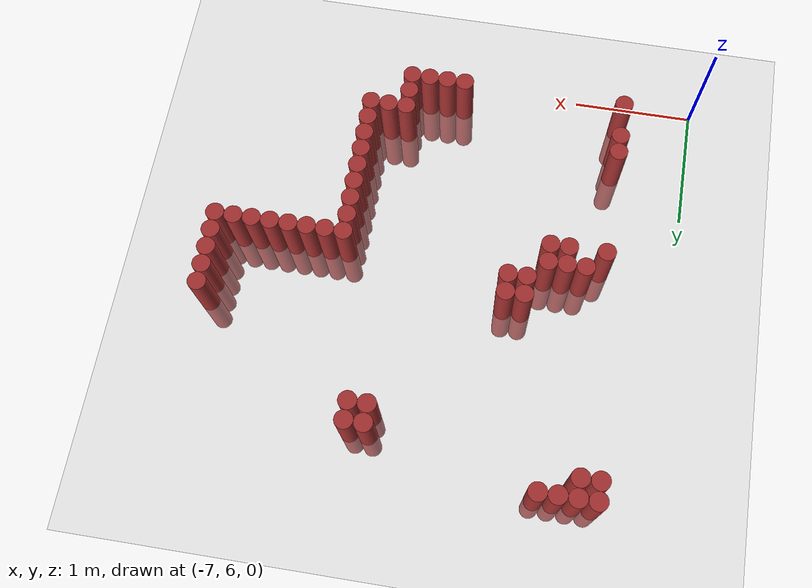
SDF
<sdf version="1.6">
 <world name="default">
  <model name="ground_plane">
   <static>1</static>
   <link name="link">
    <collision name="collision">
     <geometry><plane><normal>0 0 1</normal><size>100 100</size></plane></geometry>
     <surface><friction><ode><mu>100</mu><mu2>50</mu2></ode></friction></surface>
    </collision>
    <visual name="visual">
     <cast_shadows>0</cast_shadows>
     <geometry><plane><normal>0 0 1</normal><size>100 100</size></plane></geometry>
     <material>
      <script><uri>file://media/materials/scripts/gazebo.material</uri><name>Gazebo/Grey</name></script>
     </material>
    </visual>
   </link>
  </model>
  <model name="unit_cylinder_255">
   <static>1</static>
   <pose>-6.525000 9.375000 0.000000 0.000000 0.000000 0.000000</pose>
   <link name="link">
    <inertial>
     <mass>1</mass>
     <inertia><ixx>0.145833</ixx><ixy>0</ixy><ixz>0</ixz><iyy>0.145833</iyy><iyz>0</iyz><izz>0.125</izz></inertia>
    </inertial>
    <collision name="collision">
     <geometry><cylinder><radius>0.075000</radius><length>1</length></cylinder></geometry>
    </collision>
    <visual name="visual">
     <geometry><cylinder><radius>0.075000</radius><length>1</length></cylinder></geometry>
     <material>
      <ambient>0.648000 0.192000 0.192000 1</ambient>
      <diffuse>0.648000 0.192000 0.192000 1</diffuse>
     </material>
     <material>
      <script><name>Gazebo/Grey</name><uri>file://media/materials/scripts/gazebo.material</uri></script>
     </material>
    </visual>
   </link>
  </model>
  <model name="unit_cylinder_256">
   <static>1</static>
   <pose>-6.525000 9.525000 0.000000 0.000000 0.000000 0.000000</pose>
   <link name="link">
    <inertial>
     <mass>1</mass>
     <inertia><ixx>0.145833</ixx><ixy>0</ixy><ixz>0</ixz><iyy>0.145833</iyy><iyz>0</iyz><izz>0.125</izz></inertia>
    </inertial>
    <collision name="collision">
     <geometry><cylinder><radius>0.075000</radius><length>1</length></cylinder></geometry>
    </collision>
    <visual name="visual">
     <geometry><cylinder><radius>0.075000</radius><length>1</length></cylinder></geometry>
     <material>
      <ambient>0.648000 0.192000 0.192000 1</ambient>
      <diffuse>0.648000 0.192000 0.192000 1</diffuse>
     </material>
     <material>
      <script><name>Gazebo/Grey</name><uri>file://media/materials/scripts/gazebo.material</uri></script>
     </material>
    </visual>
   </link>
  </model>
  <model name="unit_cylinder_260">
   <static>1</static>
   <pose>-6.375000 6.225000 0.000000 0.000000 0.000000 0.000000</pose>
   <link name="link">
    <inertial>
     <mass>1</mass>
     <inertia><ixx>0.145833</ixx><ixy>0</ixy><ixz>0</ixz><iyy>0.145833</iyy><iyz>0</iyz><izz>0.125</izz></inertia>
    </inertial>
    <collision name="collision">
     <geometry><cylinder><radius>0.075000</radius><length>1</length></cylinder></geometry>
    </collision>
    <visual name="visual">
     <geometry><cylinder><radius>0.075000</radius><length>1</length></cylinder></geometry>
     <material>
      <ambient>0.648000 0.192000 0.192000 1</ambient>
      <diffuse>0.648000 0.192000 0.192000 1</diffuse>
     </material>
     <material>
      <script><name>Gazebo/Grey</name><uri>file://media/materials/scripts/gazebo.material</uri></script>
     </material>
    </visual>
   </link>
  </model>
  <model name="unit_cylinder_261">
   <static>1</static>
   <pose>-6.375000 6.525000 0.000000 0.000000 0.000000 0.000000</pose>
   <link name="link">
    <inertial>
     <mass>1</mass>
     <inertia><ixx>0.145833</ixx><ixy>0</ixy><ixz>0</ixz><iyy>0.145833</iyy><iyz>0</iyz><izz>0.125</izz></inertia>
    </inertial>
    <collision name="collision">
     <geometry><cylinder><radius>0.075000</radius><length>1</length></cylinder></geometry>
    </collision>
    <visual name="visual">
     <geometry><cylinder><radius>0.075000</radius><length>1</length></cylinder></geometry>
     <material>
      <ambient>0.648000 0.192000 0.192000 1</ambient>
      <diffuse>0.648000 0.192000 0.192000 1</diffuse>
     </material>
     <material>
      <script><name>Gazebo/Grey</name><uri>file://media/materials/scripts/gazebo.material</uri></script>
     </material>
    </visual>
   </link>
  </model>
  <model name="unit_cylinder_262">
   <static>1</static>
   <pose>-6.375000 6.675000 0.000000 0.000000 0.000000 0.000000</pose>
   <link name="link">
    <inertial>
     <mass>1</mass>
     <inertia><ixx>0.145833</ixx><ixy>0</ixy><ixz>0</ixz><iyy>0.145833</iyy><iyz>0</iyz><izz>0.125</izz></inertia>
    </inertial>
    <collision name="collision">
     <geometry><cylinder><radius>0.075000</radius><length>1</length></cylinder></geometry>
    </collision>
    <visual name="visual">
     <geometry><cylinder><radius>0.075000</radius><length>1</length></cylinder></geometry>
     <material>
      <ambient>0.648000 0.192000 0.192000 1</ambient>
      <diffuse>0.648000 0.192000 0.192000 1</diffuse>
     </material>
     <material>
      <script><name>Gazebo/Grey</name><uri>file://media/materials/scripts/gazebo.material</uri></script>
     </material>
    </visual>
   </link>
  </model>
  <model name="unit_cylinder_263">
   <static>1</static>
   <pose>-6.375000 7.575000 0.000000 0.000000 0.000000 0.000000</pose>
   <link name="link">
    <inertial>
     <mass>1</mass>
     <inertia><ixx>0.145833</ixx><ixy>0</ixy><ixz>0</ixz><iyy>0.145833</iyy><iyz>0</iyz><izz>0.125</izz></inertia>
    </inertial>
    <collision name="collision">
     <geometry><cylinder><radius>0.075000</radius><length>1</length></cylinder></geometry>
    </collision>
    <visual name="visual">
     <geometry><cylinder><radius>0.075000</radius><length>1</length></cylinder></geometry>
     <material>
      <ambient>0.648000 0.192000 0.192000 1</ambient>
      <diffuse>0.648000 0.192000 0.192000 1</diffuse>
     </material>
     <material>
      <script><name>Gazebo/Grey</name><uri>file://media/materials/scripts/gazebo.material</uri></script>
     </material>
    </visual>
   </link>
  </model>
  <model name="unit_cylinder_264">
   <static>1</static>
   <pose>-6.375000 9.375000 0.000000 0.000000 0.000000 0.000000</pose>
   <link name="link">
    <inertial>
     <mass>1</mass>
     <inertia><ixx>0.145833</ixx><ixy>0</ixy><ixz>0</ixz><iyy>0.145833</iyy><iyz>0</iyz><izz>0.125</izz></inertia>
    </inertial>
    <collision name="collision">
     <geometry><cylinder><radius>0.075000</radius><length>1</length></cylinder></geometry>
    </collision>
    <visual name="visual">
     <geometry><cylinder><radius>0.075000</radius><length>1</length></cylinder></geometry>
     <material>
      <ambient>0.648000 0.192000 0.192000 1</ambient>
      <diffuse>0.648000 0.192000 0.192000 1</diffuse>
     </material>
     <material>
      <script><name>Gazebo/Grey</name><uri>file://media/materials/scripts/gazebo.material</uri></script>
     </material>
    </visual>
   </link>
  </model>
  <model name="unit_cylinder_265">
   <static>1</static>
   <pose>-6.375000 9.525000 0.000000 0.000000 0.000000 0.000000</pose>
   <link name="link">
    <inertial>
     <mass>1</mass>
     <inertia><ixx>0.145833</ixx><ixy>0</ixy><ixz>0</ixz><iyy>0.145833</iyy><iyz>0</iyz><izz>0.125</izz></inertia>
    </inertial>
    <collision name="collision">
     <geometry><cylinder><radius>0.075000</radius><length>1</length></cylinder></geometry>
    </collision>
    <visual name="visual">
     <geometry><cylinder><radius>0.075000</radius><length>1</length></cylinder></geometry>
     <material>
      <ambient>0.648000 0.192000 0.192000 1</ambient>
      <diffuse>0.648000 0.192000 0.192000 1</diffuse>
     </material>
     <material>
      <script><name>Gazebo/Grey</name><uri>file://media/materials/scripts/gazebo.material</uri></script>
     </material>
    </visual>
   </link>
  </model>
  <model name="unit_cylinder_266">
   <static>1</static>
   <pose>-6.225000 7.725000 0.000000 0.000000 0.000000 0.000000</pose>
   <link name="link">
    <inertial>
     <mass>1</mass>
     <inertia><ixx>0.145833</ixx><ixy>0</ixy><ixz>0</ixz><iyy>0.145833</iyy><iyz>0</iyz><izz>0.125</izz></inertia>
    </inertial>
    <collision name="collision">
     <geometry><cylinder><radius>0.075000</radius><length>1</length></cylinder></geometry>
    </collision>
    <visual name="visual">
     <geometry><cylinder><radius>0.075000</radius><length>1</length></cylinder></geometry>
     <material>
      <ambient>0.648000 0.192000 0.192000 1</ambient>
      <diffuse>0.648000 0.192000 0.192000 1</diffuse>
     </material>
     <material>
      <script><name>Gazebo/Grey</name><uri>file://media/materials/scripts/gazebo.material</uri></script>
     </material>
    </visual>
   </link>
  </model>
  <model name="unit_cylinder_267">
   <static>1</static>
   <pose>-6.225000 9.525000 0.000000 0.000000 0.000000 0.000000</pose>
   <link name="link">
    <inertial>
     <mass>1</mass>
     <inertia><ixx>0.145833</ixx><ixy>0</ixy><ixz>0</ixz><iyy>0.145833</iyy><iyz>0</iyz><izz>0.125</izz></inertia>
    </inertial>
    <collision name="collision">
     <geometry><cylinder><radius>0.075000</radius><length>1</length></cylinder></geometry>
    </collision>
    <visual name="visual">
     <geometry><cylinder><radius>0.075000</radius><length>1</length></cylinder></geometry>
     <material>
      <ambient>0.648000 0.192000 0.192000 1</ambient>
      <diffuse>0.648000 0.192000 0.192000 1</diffuse>
     </material>
     <material>
      <script><name>Gazebo/Grey</name><uri>file://media/materials/scripts/gazebo.material</uri></script>
     </material>
    </visual>
   </link>
  </model>
  <model name="unit_cylinder_268">
   <static>1</static>
   <pose>-6.075000 7.575000 0.000000 0.000000 0.000000 0.000000</pose>
   <link name="link">
    <inertial>
     <mass>1</mass>
     <inertia><ixx>0.145833</ixx><ixy>0</ixy><ixz>0</ixz><iyy>0.145833</iyy><iyz>0</iyz><izz>0.125</izz></inertia>
    </inertial>
    <collision name="collision">
     <geometry><cylinder><radius>0.075000</radius><length>1</length></cylinder></geometry>
    </collision>
    <visual name="visual">
     <geometry><cylinder><radius>0.075000</radius><length>1</length></cylinder></geometry>
     <material>
      <ambient>0.648000 0.192000 0.192000 1</ambient>
      <diffuse>0.648000 0.192000 0.192000 1</diffuse>
     </material>
     <material>
      <script><name>Gazebo/Grey</name><uri>file://media/materials/scripts/gazebo.material</uri></script>
     </material>
    </visual>
   </link>
  </model>
  <model name="unit_cylinder_269">
   <static>1</static>
   <pose>-6.075000 7.725000 0.000000 0.000000 0.000000 0.000000</pose>
   <link name="link">
    <inertial>
     <mass>1</mass>
     <inertia><ixx>0.145833</ixx><ixy>0</ixy><ixz>0</ixz><iyy>0.145833</iyy><iyz>0</iyz><izz>0.125</izz></inertia>
    </inertial>
    <collision name="collision">
     <geometry><cylinder><radius>0.075000</radius><length>1</length></cylinder></geometry>
    </collision>
    <visual name="visual">
     <geometry><cylinder><radius>0.075000</radius><length>1</length></cylinder></geometry>
     <material>
      <ambient>0.648000 0.192000 0.192000 1</ambient>
      <diffuse>0.648000 0.192000 0.192000 1</diffuse>
     </material>
     <material>
      <script><name>Gazebo/Grey</name><uri>file://media/materials/scripts/gazebo.material</uri></script>
     </material>
    </visual>
   </link>
  </model>
  <model name="unit_cylinder_270">
   <static>1</static>
   <pose>-6.075000 9.525000 0.000000 0.000000 0.000000 0.000000</pose>
   <link name="link">
    <inertial>
     <mass>1</mass>
     <inertia><ixx>0.145833</ixx><ixy>0</ixy><ixz>0</ixz><iyy>0.145833</iyy><iyz>0</iyz><izz>0.125</izz></inertia>
    </inertial>
    <collision name="collision">
     <geometry><cylinder><radius>0.075000</radius><length>1</length></cylinder></geometry>
    </collision>
    <visual name="visual">
     <geometry><cylinder><radius>0.075000</radius><length>1</length></cylinder></geometry>
     <material>
      <ambient>0.648000 0.192000 0.192000 1</ambient>
      <diffuse>0.648000 0.192000 0.192000 1</diffuse>
     </material>
     <material>
      <script><name>Gazebo/Grey</name><uri>file://media/materials/scripts/gazebo.material</uri></script>
     </material>
    </visual>
   </link>
  </model>
  <model name="unit_cylinder_271">
   <static>1</static>
   <pose>-5.925000 7.575000 0.000000 0.000000 0.000000 0.000000</pose>
   <link name="link">
    <inertial>
     <mass>1</mass>
     <inertia><ixx>0.145833</ixx><ixy>0</ixy><ixz>0</ixz><iyy>0.145833</iyy><iyz>0</iyz><izz>0.125</izz></inertia>
    </inertial>
    <collision name="collision">
     <geometry><cylinder><radius>0.075000</radius><length>1</length></cylinder></geometry>
    </collision>
    <visual name="visual">
     <geometry><cylinder><radius>0.075000</radius><length>1</length></cylinder></geometry>
     <material>
      <ambient>0.648000 0.192000 0.192000 1</ambient>
      <diffuse>0.648000 0.192000 0.192000 1</diffuse>
     </material>
     <material>
      <script><name>Gazebo/Grey</name><uri>file://media/materials/scripts/gazebo.material</uri></script>
     </material>
    </visual>
   </link>
  </model>
  <model name="unit_cylinder_272">
   <static>1</static>
   <pose>-5.925000 7.725000 0.000000 0.000000 0.000000 0.000000</pose>
   <link name="link">
    <inertial>
     <mass>1</mass>
     <inertia><ixx>0.145833</ixx><ixy>0</ixy><ixz>0</ixz><iyy>0.145833</iyy><iyz>0</iyz><izz>0.125</izz></inertia>
    </inertial>
    <collision name="collision">
     <geometry><cylinder><radius>0.075000</radius><length>1</length></cylinder></geometry>
    </collision>
    <visual name="visual">
     <geometry><cylinder><radius>0.075000</radius><length>1</length></cylinder></geometry>
     <material>
      <ambient>0.648000 0.192000 0.192000 1</ambient>
      <diffuse>0.648000 0.192000 0.192000 1</diffuse>
     </material>
     <material>
      <script><name>Gazebo/Grey</name><uri>file://media/materials/scripts/gazebo.material</uri></script>
     </material>
    </visual>
   </link>
  </model>
  <model name="unit_cylinder_273">
   <static>1</static>
   <pose>-5.775000 7.875000 0.000000 0.000000 0.000000 0.000000</pose>
   <link name="link">
    <inertial>
     <mass>1</mass>
     <inertia><ixx>0.145833</ixx><ixy>0</ixy><ixz>0</ixz><iyy>0.145833</iyy><iyz>0</iyz><izz>0.125</izz></inertia>
    </inertial>
    <collision name="collision">
     <geometry><cylinder><radius>0.075000</radius><length>1</length></cylinder></geometry>
    </collision>
    <visual name="visual">
     <geometry><cylinder><radius>0.075000</radius><length>1</length></cylinder></geometry>
     <material>
      <ambient>0.648000 0.192000 0.192000 1</ambient>
      <diffuse>0.648000 0.192000 0.192000 1</diffuse>
     </material>
     <material>
      <script><name>Gazebo/Grey</name><uri>file://media/materials/scripts/gazebo.material</uri></script>
     </material>
    </visual>
   </link>
  </model>
  <model name="unit_cylinder_274">
   <static>1</static>
   <pose>-5.775000 8.025000 0.000000 0.000000 0.000000 0.000000</pose>
   <link name="link">
    <inertial>
     <mass>1</mass>
     <inertia><ixx>0.145833</ixx><ixy>0</ixy><ixz>0</ixz><iyy>0.145833</iyy><iyz>0</iyz><izz>0.125</izz></inertia>
    </inertial>
    <collision name="collision">
     <geometry><cylinder><radius>0.075000</radius><length>1</length></cylinder></geometry>
    </collision>
    <visual name="visual">
     <geometry><cylinder><radius>0.075000</radius><length>1</length></cylinder></geometry>
     <material>
      <ambient>0.648000 0.192000 0.192000 1</ambient>
      <diffuse>0.648000 0.192000 0.192000 1</diffuse>
     </material>
     <material>
      <script><name>Gazebo/Grey</name><uri>file://media/materials/scripts/gazebo.material</uri></script>
     </material>
    </visual>
   </link>
  </model>
  <model name="unit_cylinder_275">
   <static>1</static>
   <pose>-5.625000 7.875000 0.000000 0.000000 0.000000 0.000000</pose>
   <link name="link">
    <inertial>
     <mass>1</mass>
     <inertia><ixx>0.145833</ixx><ixy>0</ixy><ixz>0</ixz><iyy>0.145833</iyy><iyz>0</iyz><izz>0.125</izz></inertia>
    </inertial>
    <collision name="collision">
     <geometry><cylinder><radius>0.075000</radius><length>1</length></cylinder></geometry>
    </collision>
    <visual name="visual">
     <geometry><cylinder><radius>0.075000</radius><length>1</length></cylinder></geometry>
     <material>
      <ambient>0.648000 0.192000 0.192000 1</ambient>
      <diffuse>0.648000 0.192000 0.192000 1</diffuse>
     </material>
     <material>
      <script><name>Gazebo/Grey</name><uri>file://media/materials/scripts/gazebo.material</uri></script>
     </material>
    </visual>
   </link>
  </model>
  <model name="unit_cylinder_276">
   <static>1</static>
   <pose>-5.625000 8.025000 0.000000 0.000000 0.000000 0.000000</pose>
   <link name="link">
    <inertial>
     <mass>1</mass>
     <inertia><ixx>0.145833</ixx><ixy>0</ixy><ixz>0</ixz><iyy>0.145833</iyy><iyz>0</iyz><izz>0.125</izz></inertia>
    </inertial>
    <collision name="collision">
     <geometry><cylinder><radius>0.075000</radius><length>1</length></cylinder></geometry>
    </collision>
    <visual name="visual">
     <geometry><cylinder><radius>0.075000</radius><length>1</length></cylinder></geometry>
     <material>
      <ambient>0.648000 0.192000 0.192000 1</ambient>
      <diffuse>0.648000 0.192000 0.192000 1</diffuse>
     </material>
     <material>
      <script><name>Gazebo/Grey</name><uri>file://media/materials/scripts/gazebo.material</uri></script>
     </material>
    </visual>
   </link>
  </model>
  <model name="unit_cylinder_284">
   <static>1</static>
   <pose>-5.025000 6.225000 0.000000 0.000000 0.000000 0.000000</pose>
   <link name="link">
    <inertial>
     <mass>1</mass>
     <inertia><ixx>0.145833</ixx><ixy>0</ixy><ixz>0</ixz><iyy>0.145833</iyy><iyz>0</iyz><izz>0.125</izz></inertia>
    </inertial>
    <collision name="collision">
     <geometry><cylinder><radius>0.075000</radius><length>1</length></cylinder></geometry>
    </collision>
    <visual name="visual">
     <geometry><cylinder><radius>0.075000</radius><length>1</length></cylinder></geometry>
     <material>
      <ambient>0.648000 0.192000 0.192000 1</ambient>
      <diffuse>0.648000 0.192000 0.192000 1</diffuse>
     </material>
     <material>
      <script><name>Gazebo/Grey</name><uri>file://media/materials/scripts/gazebo.material</uri></script>
     </material>
    </visual>
   </link>
  </model>
  <model name="unit_cylinder_286">
   <static>1</static>
   <pose>-4.875000 6.225000 0.000000 0.000000 0.000000 0.000000</pose>
   <link name="link">
    <inertial>
     <mass>1</mass>
     <inertia><ixx>0.145833</ixx><ixy>0</ixy><ixz>0</ixz><iyy>0.145833</iyy><iyz>0</iyz><izz>0.125</izz></inertia>
    </inertial>
    <collision name="collision">
     <geometry><cylinder><radius>0.075000</radius><length>1</length></cylinder></geometry>
    </collision>
    <visual name="visual">
     <geometry><cylinder><radius>0.075000</radius><length>1</length></cylinder></geometry>
     <material>
      <ambient>0.648000 0.192000 0.192000 1</ambient>
      <diffuse>0.648000 0.192000 0.192000 1</diffuse>
     </material>
     <material>
      <script><name>Gazebo/Grey</name><uri>file://media/materials/scripts/gazebo.material</uri></script>
     </material>
    </visual>
   </link>
  </model>
  <model name="unit_cylinder_288">
   <static>1</static>
   <pose>-4.725000 6.225000 0.000000 0.000000 0.000000 0.000000</pose>
   <link name="link">
    <inertial>
     <mass>1</mass>
     <inertia><ixx>0.145833</ixx><ixy>0</ixy><ixz>0</ixz><iyy>0.145833</iyy><iyz>0</iyz><izz>0.125</izz></inertia>
    </inertial>
    <collision name="collision">
     <geometry><cylinder><radius>0.075000</radius><length>1</length></cylinder></geometry>
    </collision>
    <visual name="visual">
     <geometry><cylinder><radius>0.075000</radius><length>1</length></cylinder></geometry>
     <material>
      <ambient>0.648000 0.192000 0.192000 1</ambient>
      <diffuse>0.648000 0.192000 0.192000 1</diffuse>
     </material>
     <material>
      <script><name>Gazebo/Grey</name><uri>file://media/materials/scripts/gazebo.material</uri></script>
     </material>
    </visual>
   </link>
  </model>
  <model name="unit_cylinder_289">
   <static>1</static>
   <pose>-4.725000 9.075000 0.000000 0.000000 0.000000 0.000000</pose>
   <link name="link">
    <inertial>
     <mass>1</mass>
     <inertia><ixx>0.145833</ixx><ixy>0</ixy><ixz>0</ixz><iyy>0.145833</iyy><iyz>0</iyz><izz>0.125</izz></inertia>
    </inertial>
    <collision name="collision">
     <geometry><cylinder><radius>0.075000</radius><length>1</length></cylinder></geometry>
    </collision>
    <visual name="visual">
     <geometry><cylinder><radius>0.075000</radius><length>1</length></cylinder></geometry>
     <material>
      <ambient>0.648000 0.192000 0.192000 1</ambient>
      <diffuse>0.648000 0.192000 0.192000 1</diffuse>
     </material>
     <material>
      <script><name>Gazebo/Grey</name><uri>file://media/materials/scripts/gazebo.material</uri></script>
     </material>
    </visual>
   </link>
  </model>
  <model name="unit_cylinder_290">
   <static>1</static>
   <pose>-4.725000 9.225000 0.000000 0.000000 0.000000 0.000000</pose>
   <link name="link">
    <inertial>
     <mass>1</mass>
     <inertia><ixx>0.145833</ixx><ixy>0</ixy><ixz>0</ixz><iyy>0.145833</iyy><iyz>0</iyz><izz>0.125</izz></inertia>
    </inertial>
    <collision name="collision">
     <geometry><cylinder><radius>0.075000</radius><length>1</length></cylinder></geometry>
    </collision>
    <visual name="visual">
     <geometry><cylinder><radius>0.075000</radius><length>1</length></cylinder></geometry>
     <material>
      <ambient>0.648000 0.192000 0.192000 1</ambient>
      <diffuse>0.648000 0.192000 0.192000 1</diffuse>
     </material>
     <material>
      <script><name>Gazebo/Grey</name><uri>file://media/materials/scripts/gazebo.material</uri></script>
     </material>
    </visual>
   </link>
  </model>
  <model name="unit_cylinder_292">
   <static>1</static>
   <pose>-4.575000 6.225000 0.000000 0.000000 0.000000 0.000000</pose>
   <link name="link">
    <inertial>
     <mass>1</mass>
     <inertia><ixx>0.145833</ixx><ixy>0</ixy><ixz>0</ixz><iyy>0.145833</iyy><iyz>0</iyz><izz>0.125</izz></inertia>
    </inertial>
    <collision name="collision">
     <geometry><cylinder><radius>0.075000</radius><length>1</length></cylinder></geometry>
    </collision>
    <visual name="visual">
     <geometry><cylinder><radius>0.075000</radius><length>1</length></cylinder></geometry>
     <material>
      <ambient>0.648000 0.192000 0.192000 1</ambient>
      <diffuse>0.648000 0.192000 0.192000 1</diffuse>
     </material>
     <material>
      <script><name>Gazebo/Grey</name><uri>file://media/materials/scripts/gazebo.material</uri></script>
     </material>
    </visual>
   </link>
  </model>
  <model name="unit_cylinder_293">
   <static>1</static>
   <pose>-4.575000 6.375000 0.000000 0.000000 0.000000 0.000000</pose>
   <link name="link">
    <inertial>
     <mass>1</mass>
     <inertia><ixx>0.145833</ixx><ixy>0</ixy><ixz>0</ixz><iyy>0.145833</iyy><iyz>0</iyz><izz>0.125</izz></inertia>
    </inertial>
    <collision name="collision">
     <geometry><cylinder><radius>0.075000</radius><length>1</length></cylinder></geometry>
    </collision>
    <visual name="visual">
     <geometry><cylinder><radius>0.075000</radius><length>1</length></cylinder></geometry>
     <material>
      <ambient>0.648000 0.192000 0.192000 1</ambient>
      <diffuse>0.648000 0.192000 0.192000 1</diffuse>
     </material>
     <material>
      <script><name>Gazebo/Grey</name><uri>file://media/materials/scripts/gazebo.material</uri></script>
     </material>
    </visual>
   </link>
  </model>
  <model name="unit_cylinder_294">
   <static>1</static>
   <pose>-4.575000 6.525000 0.000000 0.000000 0.000000 0.000000</pose>
   <link name="link">
    <inertial>
     <mass>1</mass>
     <inertia><ixx>0.145833</ixx><ixy>0</ixy><ixz>0</ixz><iyy>0.145833</iyy><iyz>0</iyz><izz>0.125</izz></inertia>
    </inertial>
    <collision name="collision">
     <geometry><cylinder><radius>0.075000</radius><length>1</length></cylinder></geometry>
    </collision>
    <visual name="visual">
     <geometry><cylinder><radius>0.075000</radius><length>1</length></cylinder></geometry>
     <material>
      <ambient>0.648000 0.192000 0.192000 1</ambient>
      <diffuse>0.648000 0.192000 0.192000 1</diffuse>
     </material>
     <material>
      <script><name>Gazebo/Grey</name><uri>file://media/materials/scripts/gazebo.material</uri></script>
     </material>
    </visual>
   </link>
  </model>
  <model name="unit_cylinder_295">
   <static>1</static>
   <pose>-4.575000 9.075000 0.000000 0.000000 0.000000 0.000000</pose>
   <link name="link">
    <inertial>
     <mass>1</mass>
     <inertia><ixx>0.145833</ixx><ixy>0</ixy><ixz>0</ixz><iyy>0.145833</iyy><iyz>0</iyz><izz>0.125</izz></inertia>
    </inertial>
    <collision name="collision">
     <geometry><cylinder><radius>0.075000</radius><length>1</length></cylinder></geometry>
    </collision>
    <visual name="visual">
     <geometry><cylinder><radius>0.075000</radius><length>1</length></cylinder></geometry>
     <material>
      <ambient>0.648000 0.192000 0.192000 1</ambient>
      <diffuse>0.648000 0.192000 0.192000 1</diffuse>
     </material>
     <material>
      <script><name>Gazebo/Grey</name><uri>file://media/materials/scripts/gazebo.material</uri></script>
     </material>
    </visual>
   </link>
  </model>
  <model name="unit_cylinder_296">
   <static>1</static>
   <pose>-4.575000 9.225000 0.000000 0.000000 0.000000 0.000000</pose>
   <link name="link">
    <inertial>
     <mass>1</mass>
     <inertia><ixx>0.145833</ixx><ixy>0</ixy><ixz>0</ixz><iyy>0.145833</iyy><iyz>0</iyz><izz>0.125</izz></inertia>
    </inertial>
    <collision name="collision">
     <geometry><cylinder><radius>0.075000</radius><length>1</length></cylinder></geometry>
    </collision>
    <visual name="visual">
     <geometry><cylinder><radius>0.075000</radius><length>1</length></cylinder></geometry>
     <material>
      <ambient>0.648000 0.192000 0.192000 1</ambient>
      <diffuse>0.648000 0.192000 0.192000 1</diffuse>
     </material>
     <material>
      <script><name>Gazebo/Grey</name><uri>file://media/materials/scripts/gazebo.material</uri></script>
     </material>
    </visual>
   </link>
  </model>
  <model name="unit_cylinder_298">
   <static>1</static>
   <pose>-4.425000 6.525000 0.000000 0.000000 0.000000 0.000000</pose>
   <link name="link">
    <inertial>
     <mass>1</mass>
     <inertia><ixx>0.145833</ixx><ixy>0</ixy><ixz>0</ixz><iyy>0.145833</iyy><iyz>0</iyz><izz>0.125</izz></inertia>
    </inertial>
    <collision name="collision">
     <geometry><cylinder><radius>0.075000</radius><length>1</length></cylinder></geometry>
    </collision>
    <visual name="visual">
     <geometry><cylinder><radius>0.075000</radius><length>1</length></cylinder></geometry>
     <material>
      <ambient>0.648000 0.192000 0.192000 1</ambient>
      <diffuse>0.648000 0.192000 0.192000 1</diffuse>
     </material>
     <material>
      <script><name>Gazebo/Grey</name><uri>file://media/materials/scripts/gazebo.material</uri></script>
     </material>
    </visual>
   </link>
  </model>
  <model name="unit_cylinder_300">
   <static>1</static>
   <pose>-4.275000 6.525000 0.000000 0.000000 0.000000 0.000000</pose>
   <link name="link">
    <inertial>
     <mass>1</mass>
     <inertia><ixx>0.145833</ixx><ixy>0</ixy><ixz>0</ixz><iyy>0.145833</iyy><iyz>0</iyz><izz>0.125</izz></inertia>
    </inertial>
    <collision name="collision">
     <geometry><cylinder><radius>0.075000</radius><length>1</length></cylinder></geometry>
    </collision>
    <visual name="visual">
     <geometry><cylinder><radius>0.075000</radius><length>1</length></cylinder></geometry>
     <material>
      <ambient>0.648000 0.192000 0.192000 1</ambient>
      <diffuse>0.648000 0.192000 0.192000 1</diffuse>
     </material>
     <material>
      <script><name>Gazebo/Grey</name><uri>file://media/materials/scripts/gazebo.material</uri></script>
     </material>
    </visual>
   </link>
  </model>
  <model name="unit_cylinder_301">
   <static>1</static>
   <pose>-4.275000 6.675000 0.000000 0.000000 0.000000 0.000000</pose>
   <link name="link">
    <inertial>
     <mass>1</mass>
     <inertia><ixx>0.145833</ixx><ixy>0</ixy><ixz>0</ixz><iyy>0.145833</iyy><iyz>0</iyz><izz>0.125</izz></inertia>
    </inertial>
    <collision name="collision">
     <geometry><cylinder><radius>0.075000</radius><length>1</length></cylinder></geometry>
    </collision>
    <visual name="visual">
     <geometry><cylinder><radius>0.075000</radius><length>1</length></cylinder></geometry>
     <material>
      <ambient>0.648000 0.192000 0.192000 1</ambient>
      <diffuse>0.648000 0.192000 0.192000 1</diffuse>
     </material>
     <material>
      <script><name>Gazebo/Grey</name><uri>file://media/materials/scripts/gazebo.material</uri></script>
     </material>
    </visual>
   </link>
  </model>
  <model name="unit_cylinder_302">
   <static>1</static>
   <pose>-4.275000 6.825000 0.000000 0.000000 0.000000 0.000000</pose>
   <link name="link">
    <inertial>
     <mass>1</mass>
     <inertia><ixx>0.145833</ixx><ixy>0</ixy><ixz>0</ixz><iyy>0.145833</iyy><iyz>0</iyz><izz>0.125</izz></inertia>
    </inertial>
    <collision name="collision">
     <geometry><cylinder><radius>0.075000</radius><length>1</length></cylinder></geometry>
    </collision>
    <visual name="visual">
     <geometry><cylinder><radius>0.075000</radius><length>1</length></cylinder></geometry>
     <material>
      <ambient>0.648000 0.192000 0.192000 1</ambient>
      <diffuse>0.648000 0.192000 0.192000 1</diffuse>
     </material>
     <material>
      <script><name>Gazebo/Grey</name><uri>file://media/materials/scripts/gazebo.material</uri></script>
     </material>
    </visual>
   </link>
  </model>
  <model name="unit_cylinder_303">
   <static>1</static>
   <pose>-4.275000 6.975000 0.000000 0.000000 0.000000 0.000000</pose>
   <link name="link">
    <inertial>
     <mass>1</mass>
     <inertia><ixx>0.145833</ixx><ixy>0</ixy><ixz>0</ixz><iyy>0.145833</iyy><iyz>0</iyz><izz>0.125</izz></inertia>
    </inertial>
    <collision name="collision">
     <geometry><cylinder><radius>0.075000</radius><length>1</length></cylinder></geometry>
    </collision>
    <visual name="visual">
     <geometry><cylinder><radius>0.075000</radius><length>1</length></cylinder></geometry>
     <material>
      <ambient>0.648000 0.192000 0.192000 1</ambient>
      <diffuse>0.648000 0.192000 0.192000 1</diffuse>
     </material>
     <material>
      <script><name>Gazebo/Grey</name><uri>file://media/materials/scripts/gazebo.material</uri></script>
     </material>
    </visual>
   </link>
  </model>
  <model name="unit_cylinder_304">
   <static>1</static>
   <pose>-4.275000 7.125000 0.000000 0.000000 0.000000 0.000000</pose>
   <link name="link">
    <inertial>
     <mass>1</mass>
     <inertia><ixx>0.145833</ixx><ixy>0</ixy><ixz>0</ixz><iyy>0.145833</iyy><iyz>0</iyz><izz>0.125</izz></inertia>
    </inertial>
    <collision name="collision">
     <geometry><cylinder><radius>0.075000</radius><length>1</length></cylinder></geometry>
    </collision>
    <visual name="visual">
     <geometry><cylinder><radius>0.075000</radius><length>1</length></cylinder></geometry>
     <material>
      <ambient>0.648000 0.192000 0.192000 1</ambient>
      <diffuse>0.648000 0.192000 0.192000 1</diffuse>
     </material>
     <material>
      <script><name>Gazebo/Grey</name><uri>file://media/materials/scripts/gazebo.material</uri></script>
     </material>
    </visual>
   </link>
  </model>
  <model name="unit_cylinder_305">
   <static>1</static>
   <pose>-4.275000 7.275000 0.000000 0.000000 0.000000 0.000000</pose>
   <link name="link">
    <inertial>
     <mass>1</mass>
     <inertia><ixx>0.145833</ixx><ixy>0</ixy><ixz>0</ixz><iyy>0.145833</iyy><iyz>0</iyz><izz>0.125</izz></inertia>
    </inertial>
    <collision name="collision">
     <geometry><cylinder><radius>0.075000</radius><length>1</length></cylinder></geometry>
    </collision>
    <visual name="visual">
     <geometry><cylinder><radius>0.075000</radius><length>1</length></cylinder></geometry>
     <material>
      <ambient>0.648000 0.192000 0.192000 1</ambient>
      <diffuse>0.648000 0.192000 0.192000 1</diffuse>
     </material>
     <material>
      <script><name>Gazebo/Grey</name><uri>file://media/materials/scripts/gazebo.material</uri></script>
     </material>
    </visual>
   </link>
  </model>
  <model name="unit_cylinder_306">
   <static>1</static>
   <pose>-4.275000 7.425000 0.000000 0.000000 0.000000 0.000000</pose>
   <link name="link">
    <inertial>
     <mass>1</mass>
     <inertia><ixx>0.145833</ixx><ixy>0</ixy><ixz>0</ixz><iyy>0.145833</iyy><iyz>0</iyz><izz>0.125</izz></inertia>
    </inertial>
    <collision name="collision">
     <geometry><cylinder><radius>0.075000</radius><length>1</length></cylinder></geometry>
    </collision>
    <visual name="visual">
     <geometry><cylinder><radius>0.075000</radius><length>1</length></cylinder></geometry>
     <material>
      <ambient>0.648000 0.192000 0.192000 1</ambient>
      <diffuse>0.648000 0.192000 0.192000 1</diffuse>
     </material>
     <material>
      <script><name>Gazebo/Grey</name><uri>file://media/materials/scripts/gazebo.material</uri></script>
     </material>
    </visual>
   </link>
  </model>
  <model name="unit_cylinder_307">
   <static>1</static>
   <pose>-4.275000 7.575000 0.000000 0.000000 0.000000 0.000000</pose>
   <link name="link">
    <inertial>
     <mass>1</mass>
     <inertia><ixx>0.145833</ixx><ixy>0</ixy><ixz>0</ixz><iyy>0.145833</iyy><iyz>0</iyz><izz>0.125</izz></inertia>
    </inertial>
    <collision name="collision">
     <geometry><cylinder><radius>0.075000</radius><length>1</length></cylinder></geometry>
    </collision>
    <visual name="visual">
     <geometry><cylinder><radius>0.075000</radius><length>1</length></cylinder></geometry>
     <material>
      <ambient>0.648000 0.192000 0.192000 1</ambient>
      <diffuse>0.648000 0.192000 0.192000 1</diffuse>
     </material>
     <material>
      <script><name>Gazebo/Grey</name><uri>file://media/materials/scripts/gazebo.material</uri></script>
     </material>
    </visual>
   </link>
  </model>
  <model name="unit_cylinder_308">
   <static>1</static>
   <pose>-4.275000 7.725000 0.000000 0.000000 0.000000 0.000000</pose>
   <link name="link">
    <inertial>
     <mass>1</mass>
     <inertia><ixx>0.145833</ixx><ixy>0</ixy><ixz>0</ixz><iyy>0.145833</iyy><iyz>0</iyz><izz>0.125</izz></inertia>
    </inertial>
    <collision name="collision">
     <geometry><cylinder><radius>0.075000</radius><length>1</length></cylinder></geometry>
    </collision>
    <visual name="visual">
     <geometry><cylinder><radius>0.075000</radius><length>1</length></cylinder></geometry>
     <material>
      <ambient>0.648000 0.192000 0.192000 1</ambient>
      <diffuse>0.648000 0.192000 0.192000 1</diffuse>
     </material>
     <material>
      <script><name>Gazebo/Grey</name><uri>file://media/materials/scripts/gazebo.material</uri></script>
     </material>
    </visual>
   </link>
  </model>
  <model name="unit_cylinder_310">
   <static>1</static>
   <pose>-4.125000 7.725000 0.000000 0.000000 0.000000 0.000000</pose>
   <link name="link">
    <inertial>
     <mass>1</mass>
     <inertia><ixx>0.145833</ixx><ixy>0</ixy><ixz>0</ixz><iyy>0.145833</iyy><iyz>0</iyz><izz>0.125</izz></inertia>
    </inertial>
    <collision name="collision">
     <geometry><cylinder><radius>0.075000</radius><length>1</length></cylinder></geometry>
    </collision>
    <visual name="visual">
     <geometry><cylinder><radius>0.075000</radius><length>1</length></cylinder></geometry>
     <material>
      <ambient>0.648000 0.192000 0.192000 1</ambient>
      <diffuse>0.648000 0.192000 0.192000 1</diffuse>
     </material>
     <material>
      <script><name>Gazebo/Grey</name><uri>file://media/materials/scripts/gazebo.material</uri></script>
     </material>
    </visual>
   </link>
  </model>
  <model name="unit_cylinder_312">
   <static>1</static>
   <pose>-3.975000 7.725000 0.000000 0.000000 0.000000 0.000000</pose>
   <link name="link">
    <inertial>
     <mass>1</mass>
     <inertia><ixx>0.145833</ixx><ixy>0</ixy><ixz>0</ixz><iyy>0.145833</iyy><iyz>0</iyz><izz>0.125</izz></inertia>
    </inertial>
    <collision name="collision">
     <geometry><cylinder><radius>0.075000</radius><length>1</length></cylinder></geometry>
    </collision>
    <visual name="visual">
     <geometry><cylinder><radius>0.075000</radius><length>1</length></cylinder></geometry>
     <material>
      <ambient>0.648000 0.192000 0.192000 1</ambient>
      <diffuse>0.648000 0.192000 0.192000 1</diffuse>
     </material>
     <material>
      <script><name>Gazebo/Grey</name><uri>file://media/materials/scripts/gazebo.material</uri></script>
     </material>
    </visual>
   </link>
  </model>
  <model name="unit_cylinder_314">
   <static>1</static>
   <pose>-3.825000 7.725000 0.000000 0.000000 0.000000 0.000000</pose>
   <link name="link">
    <inertial>
     <mass>1</mass>
     <inertia><ixx>0.145833</ixx><ixy>0</ixy><ixz>0</ixz><iyy>0.145833</iyy><iyz>0</iyz><izz>0.125</izz></inertia>
    </inertial>
    <collision name="collision">
     <geometry><cylinder><radius>0.075000</radius><length>1</length></cylinder></geometry>
    </collision>
    <visual name="visual">
     <geometry><cylinder><radius>0.075000</radius><length>1</length></cylinder></geometry>
     <material>
      <ambient>0.648000 0.192000 0.192000 1</ambient>
      <diffuse>0.648000 0.192000 0.192000 1</diffuse>
     </material>
     <material>
      <script><name>Gazebo/Grey</name><uri>file://media/materials/scripts/gazebo.material</uri></script>
     </material>
    </visual>
   </link>
  </model>
  <model name="unit_cylinder_316">
   <static>1</static>
   <pose>-3.675000 7.725000 0.000000 0.000000 0.000000 0.000000</pose>
   <link name="link">
    <inertial>
     <mass>1</mass>
     <inertia><ixx>0.145833</ixx><ixy>0</ixy><ixz>0</ixz><iyy>0.145833</iyy><iyz>0</iyz><izz>0.125</izz></inertia>
    </inertial>
    <collision name="collision">
     <geometry><cylinder><radius>0.075000</radius><length>1</length></cylinder></geometry>
    </collision>
    <visual name="visual">
     <geometry><cylinder><radius>0.075000</radius><length>1</length></cylinder></geometry>
     <material>
      <ambient>0.648000 0.192000 0.192000 1</ambient>
      <diffuse>0.648000 0.192000 0.192000 1</diffuse>
     </material>
     <material>
      <script><name>Gazebo/Grey</name><uri>file://media/materials/scripts/gazebo.material</uri></script>
     </material>
    </visual>
   </link>
  </model>
  <model name="unit_cylinder_318">
   <static>1</static>
   <pose>-3.525000 7.725000 0.000000 0.000000 0.000000 0.000000</pose>
   <link name="link">
    <inertial>
     <mass>1</mass>
     <inertia><ixx>0.145833</ixx><ixy>0</ixy><ixz>0</ixz><iyy>0.145833</iyy><iyz>0</iyz><izz>0.125</izz></inertia>
    </inertial>
    <collision name="collision">
     <geometry><cylinder><radius>0.075000</radius><length>1</length></cylinder></geometry>
    </collision>
    <visual name="visual">
     <geometry><cylinder><radius>0.075000</radius><length>1</length></cylinder></geometry>
     <material>
      <ambient>0.648000 0.192000 0.192000 1</ambient>
      <diffuse>0.648000 0.192000 0.192000 1</diffuse>
     </material>
     <material>
      <script><name>Gazebo/Grey</name><uri>file://media/materials/scripts/gazebo.material</uri></script>
     </material>
    </visual>
   </link>
  </model>
  <model name="unit_cylinder_320">
   <static>1</static>
   <pose>-3.375000 7.725000 0.000000 0.000000 0.000000 0.000000</pose>
   <link name="link">
    <inertial>
     <mass>1</mass>
     <inertia><ixx>0.145833</ixx><ixy>0</ixy><ixz>0</ixz><iyy>0.145833</iyy><iyz>0</iyz><izz>0.125</izz></inertia>
    </inertial>
    <collision name="collision">
     <geometry><cylinder><radius>0.075000</radius><length>1</length></cylinder></geometry>
    </collision>
    <visual name="visual">
     <geometry><cylinder><radius>0.075000</radius><length>1</length></cylinder></geometry>
     <material>
      <ambient>0.648000 0.192000 0.192000 1</ambient>
      <diffuse>0.648000 0.192000 0.192000 1</diffuse>
     </material>
     <material>
      <script><name>Gazebo/Grey</name><uri>file://media/materials/scripts/gazebo.material</uri></script>
     </material>
    </visual>
   </link>
  </model>
  <model name="unit_cylinder_322">
   <static>1</static>
   <pose>-3.225000 7.725000 0.000000 0.000000 0.000000 0.000000</pose>
   <link name="link">
    <inertial>
     <mass>1</mass>
     <inertia><ixx>0.145833</ixx><ixy>0</ixy><ixz>0</ixz><iyy>0.145833</iyy><iyz>0</iyz><izz>0.125</izz></inertia>
    </inertial>
    <collision name="collision">
     <geometry><cylinder><radius>0.075000</radius><length>1</length></cylinder></geometry>
    </collision>
    <visual name="visual">
     <geometry><cylinder><radius>0.075000</radius><length>1</length></cylinder></geometry>
     <material>
      <ambient>0.648000 0.192000 0.192000 1</ambient>
      <diffuse>0.648000 0.192000 0.192000 1</diffuse>
     </material>
     <material>
      <script><name>Gazebo/Grey</name><uri>file://media/materials/scripts/gazebo.material</uri></script>
     </material>
    </visual>
   </link>
  </model>
  <model name="unit_cylinder_323">
   <static>1</static>
   <pose>-3.225000 7.875000 0.000000 0.000000 0.000000 0.000000</pose>
   <link name="link">
    <inertial>
     <mass>1</mass>
     <inertia><ixx>0.145833</ixx><ixy>0</ixy><ixz>0</ixz><iyy>0.145833</iyy><iyz>0</iyz><izz>0.125</izz></inertia>
    </inertial>
    <collision name="collision">
     <geometry><cylinder><radius>0.075000</radius><length>1</length></cylinder></geometry>
    </collision>
    <visual name="visual">
     <geometry><cylinder><radius>0.075000</radius><length>1</length></cylinder></geometry>
     <material>
      <ambient>0.648000 0.192000 0.192000 1</ambient>
      <diffuse>0.648000 0.192000 0.192000 1</diffuse>
     </material>
     <material>
      <script><name>Gazebo/Grey</name><uri>file://media/materials/scripts/gazebo.material</uri></script>
     </material>
    </visual>
   </link>
  </model>
  <model name="unit_cylinder_324">
   <static>1</static>
   <pose>-3.225000 8.025000 0.000000 0.000000 0.000000 0.000000</pose>
   <link name="link">
    <inertial>
     <mass>1</mass>
     <inertia><ixx>0.145833</ixx><ixy>0</ixy><ixz>0</ixz><iyy>0.145833</iyy><iyz>0</iyz><izz>0.125</izz></inertia>
    </inertial>
    <collision name="collision">
     <geometry><cylinder><radius>0.075000</radius><length>1</length></cylinder></geometry>
    </collision>
    <visual name="visual">
     <geometry><cylinder><radius>0.075000</radius><length>1</length></cylinder></geometry>
     <material>
      <ambient>0.648000 0.192000 0.192000 1</ambient>
      <diffuse>0.648000 0.192000 0.192000 1</diffuse>
     </material>
     <material>
      <script><name>Gazebo/Grey</name><uri>file://media/materials/scripts/gazebo.material</uri></script>
     </material>
    </visual>
   </link>
  </model>
  <model name="unit_cylinder_325">
   <static>1</static>
   <pose>-3.225000 8.175000 0.000000 0.000000 0.000000 0.000000</pose>
   <link name="link">
    <inertial>
     <mass>1</mass>
     <inertia><ixx>0.145833</ixx><ixy>0</ixy><ixz>0</ixz><iyy>0.145833</iyy><iyz>0</iyz><izz>0.125</izz></inertia>
    </inertial>
    <collision name="collision">
     <geometry><cylinder><radius>0.075000</radius><length>1</length></cylinder></geometry>
    </collision>
    <visual name="visual">
     <geometry><cylinder><radius>0.075000</radius><length>1</length></cylinder></geometry>
     <material>
      <ambient>0.648000 0.192000 0.192000 1</ambient>
      <diffuse>0.648000 0.192000 0.192000 1</diffuse>
     </material>
     <material>
      <script><name>Gazebo/Grey</name><uri>file://media/materials/scripts/gazebo.material</uri></script>
     </material>
    </visual>
   </link>
  </model>
  <model name="unit_cylinder_326">
   <static>1</static>
   <pose>-3.225000 8.325000 0.000000 0.000000 0.000000 0.000000</pose>
   <link name="link">
    <inertial>
     <mass>1</mass>
     <inertia><ixx>0.145833</ixx><ixy>0</ixy><ixz>0</ixz><iyy>0.145833</iyy><iyz>0</iyz><izz>0.125</izz></inertia>
    </inertial>
    <collision name="collision">
     <geometry><cylinder><radius>0.075000</radius><length>1</length></cylinder></geometry>
    </collision>
    <visual name="visual">
     <geometry><cylinder><radius>0.075000</radius><length>1</length></cylinder></geometry>
     <material>
      <ambient>0.648000 0.192000 0.192000 1</ambient>
      <diffuse>0.648000 0.192000 0.192000 1</diffuse>
     </material>
     <material>
      <script><name>Gazebo/Grey</name><uri>file://media/materials/scripts/gazebo.material</uri></script>
     </material>
    </visual>
   </link>
  </model>
 </world>
</sdf>
